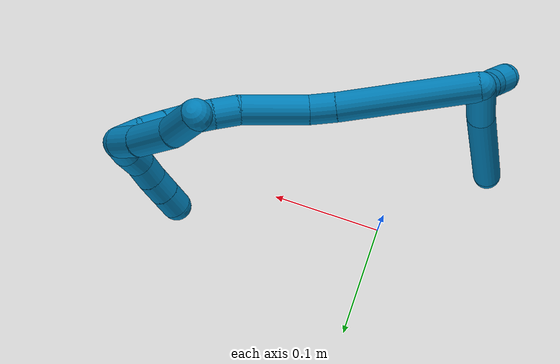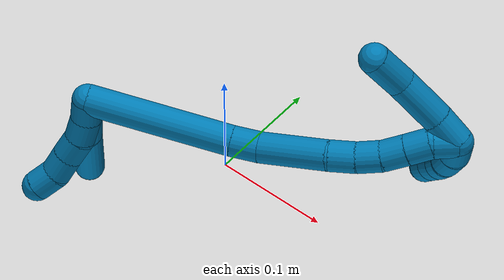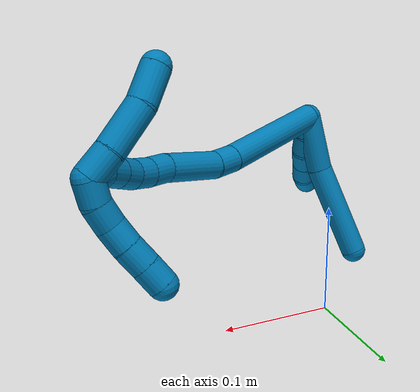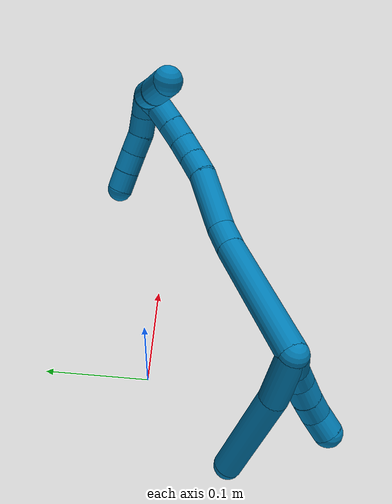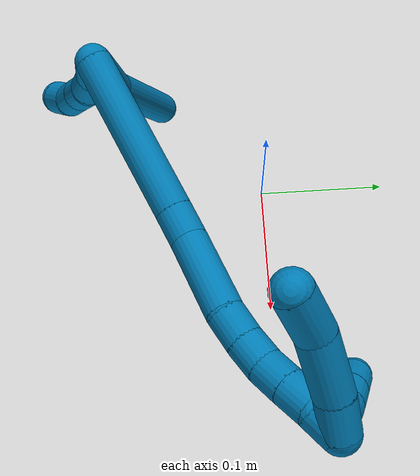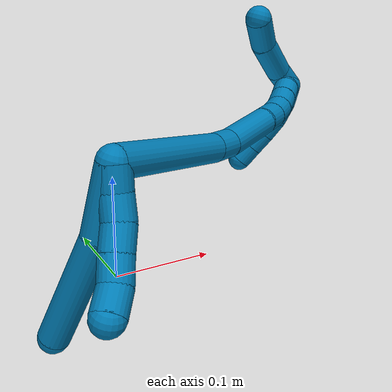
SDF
<sdf version="1.7">
 <world name="default">
  <model name="9">
   <static>0</static>
   <link name="9">
    <collision name="collision-cylinder-e_1_2_8">
     <pose>8.1e-05 0.000244 -0.027806 -3.1328 0.002909 -0.639119</pose>
     <geometry><cylinder><radius>0.0125</radius><length>0.055614</length></cylinder></geometry>
     <surface>
      <friction><ode><mu>1.16</mu><mu2>1.16</mu2><slip1>0</slip1><slip2>0</slip2></ode></friction>
      <contact><ode><kp>1e+06</kp><kd>1</kd><max_vel>0</max_vel><min_depth>0.001</min_depth></ode></contact>
     </surface>
    </collision>
    <visual name="visual-cylinder-e_1_2_8">
     <pose>8.1e-05 0.000244 -0.027806 -3.1328 0.002909 -0.639119</pose>
     <geometry><cylinder><radius>0.0125</radius><length>0.055614</length></cylinder></geometry>
     <material><ambient>0 0.490196 0.709804 1</ambient></material>
    </visual>
    <collision name="collision-cylinder-e_2_8_6">
     <pose>-0.006263 0.008012 -0.101756 -2.97999 -0.136557 1.40258</pose>
     <geometry><cylinder><radius>0.0125</radius><length>0.094386</length></cylinder></geometry>
     <surface>
      <friction><ode><mu>1.16</mu><mu2>1.16</mu2><slip1>0</slip1><slip2>0</slip2></ode></friction>
      <contact><ode><kp>1e+06</kp><kd>1</kd><max_vel>0</max_vel><min_depth>0.001</min_depth></ode></contact>
     </surface>
    </collision>
    <visual name="visual-cylinder-e_2_8_6">
     <pose>-0.006263 0.008012 -0.101756 -2.97999 -0.136557 1.40258</pose>
     <geometry><cylinder><radius>0.0125</radius><length>0.094386</length></cylinder></geometry>
     <material><ambient>0 0.490196 0.709804 1</ambient></material>
    </visual>
    <collision name="collision-cylinder-e_1_2_9">
     <pose>0.002205 -0.002159 -0.009512 2.91838 0.222279 1.56658</pose>
     <geometry><cylinder><radius>0.0125</radius><length>0.02</length></cylinder></geometry>
     <surface>
      <friction><ode><mu>1.16</mu><mu2>1.16</mu2><slip1>0</slip1><slip2>0</slip2></ode></friction>
      <contact><ode><kp>1e+06</kp><kd>1</kd><max_vel>0</max_vel><min_depth>0.001</min_depth></ode></contact>
     </surface>
    </collision>
    <visual name="visual-cylinder-e_1_2_9">
     <pose>0.002205 -0.002159 -0.009512 2.91838 0.222279 1.56658</pose>
     <geometry><cylinder><radius>0.0125</radius><length>0.02</length></cylinder></geometry>
     <material><ambient>0 0.490196 0.709804 1</ambient></material>
    </visual>
    <collision name="collision-cylinder-e_2_9_10">
     <pose>0.006535 -0.008894 -0.027658 2.6543 0.214243 0.816541</pose>
     <geometry><cylinder><radius>0.0125</radius><length>0.02</length></cylinder></geometry>
     <surface>
      <friction><ode><mu>1.16</mu><mu2>1.16</mu2><slip1>0</slip1><slip2>0</slip2></ode></friction>
      <contact><ode><kp>1e+06</kp><kd>1</kd><max_vel>0</max_vel><min_depth>0.001</min_depth></ode></contact>
     </surface>
    </collision>
    <visual name="visual-cylinder-e_2_9_10">
     <pose>0.006535 -0.008894 -0.027658 2.6543 0.214243 0.816541</pose>
     <geometry><cylinder><radius>0.0125</radius><length>0.02</length></cylinder></geometry>
     <material><ambient>0 0.490196 0.709804 1</ambient></material>
    </visual>
    <collision name="collision-cylinder-e_3_10_11">
     <pose>0.008459 -0.019113 -0.044544 2.54169 -0.020242 -0.065426</pose>
     <geometry><cylinder><radius>0.0125</radius><length>0.02</length></cylinder></geometry>
     <surface>
      <friction><ode><mu>1.16</mu><mu2>1.16</mu2><slip1>0</slip1><slip2>0</slip2></ode></friction>
      <contact><ode><kp>1e+06</kp><kd>1</kd><max_vel>0</max_vel><min_depth>0.001</min_depth></ode></contact>
     </surface>
    </collision>
    <visual name="visual-cylinder-e_3_10_11">
     <pose>0.008459 -0.019113 -0.044544 2.54169 -0.020242 -0.065426</pose>
     <geometry><cylinder><radius>0.0125</radius><length>0.02</length></cylinder></geometry>
     <material><ambient>0 0.490196 0.709804 1</ambient></material>
    </visual>
    <collision name="collision-cylinder-e_4_11_12">
     <pose>0.008582 -0.030766 -0.060784 2.49665 0.03254 0.097317</pose>
     <geometry><cylinder><radius>0.0125</radius><length>0.02</length></cylinder></geometry>
     <surface>
      <friction><ode><mu>1.16</mu><mu2>1.16</mu2><slip1>0</slip1><slip2>0</slip2></ode></friction>
      <contact><ode><kp>1e+06</kp><kd>1</kd><max_vel>0</max_vel><min_depth>0.001</min_depth></ode></contact>
     </surface>
    </collision>
    <visual name="visual-cylinder-e_4_11_12">
     <pose>0.008582 -0.030766 -0.060784 2.49665 0.03254 0.097317</pose>
     <geometry><cylinder><radius>0.0125</radius><length>0.02</length></cylinder></geometry>
     <material><ambient>0 0.490196 0.709804 1</ambient></material>
    </visual>
    <collision name="collision-cylinder-e_5_12_5">
     <pose>0.006599 -0.044229 -0.075024 2.26879 -0.232953 -0.491604</pose>
     <geometry><cylinder><radius>0.0125</radius><length>0.02</length></cylinder></geometry>
     <surface>
      <friction><ode><mu>1.16</mu><mu2>1.16</mu2><slip1>0</slip1><slip2>0</slip2></ode></friction>
      <contact><ode><kp>1e+06</kp><kd>1</kd><max_vel>0</max_vel><min_depth>0.001</min_depth></ode></contact>
     </surface>
    </collision>
    <visual name="visual-cylinder-e_5_12_5">
     <pose>0.006599 -0.044229 -0.075024 2.26879 -0.232953 -0.491604</pose>
     <geometry><cylinder><radius>0.0125</radius><length>0.02</length></cylinder></geometry>
     <material><ambient>0 0.490196 0.709804 1</ambient></material>
    </visual>
    <collision name="collision-cylinder-e_1_2_13">
     <pose>0.048026 0.034387 -0.000342 -1.58075 0.949389 -0.957508</pose>
     <geometry><cylinder><radius>0.0125</radius><length>0.118137</length></cylinder></geometry>
     <surface>
      <friction><ode><mu>1.16</mu><mu2>1.16</mu2><slip1>0</slip1><slip2>0</slip2></ode></friction>
      <contact><ode><kp>1e+06</kp><kd>1</kd><max_vel>0</max_vel><min_depth>0.001</min_depth></ode></contact>
     </surface>
    </collision>
    <visual name="visual-cylinder-e_1_2_13">
     <pose>0.048026 0.034387 -0.000342 -1.58075 0.949389 -0.957508</pose>
     <geometry><cylinder><radius>0.0125</radius><length>0.118137</length></cylinder></geometry>
     <material><ambient>0 0.490196 0.709804 1</ambient></material>
    </visual>
    <collision name="collision-cylinder-e_2_13_14">
     <pose>0.105371 0.075451 0.000584 -1.38303 0.940575 -0.796682</pose>
     <geometry><cylinder><radius>0.0125</radius><length>0.023068</length></cylinder></geometry>
     <surface>
      <friction><ode><mu>1.16</mu><mu2>1.16</mu2><slip1>0</slip1><slip2>0</slip2></ode></friction>
      <contact><ode><kp>1e+06</kp><kd>1</kd><max_vel>0</max_vel><min_depth>0.001</min_depth></ode></contact>
     </surface>
    </collision>
    <visual name="visual-cylinder-e_2_13_14">
     <pose>0.105371 0.075451 0.000584 -1.38303 0.940575 -0.796682</pose>
     <geometry><cylinder><radius>0.0125</radius><length>0.023068</length></cylinder></geometry>
     <material><ambient>0 0.490196 0.709804 1</ambient></material>
    </visual>
    <collision name="collision-cylinder-e_3_14_15">
     <pose>0.136665 0.097828 0.010808 -1.05238 0.882521 -0.535484</pose>
     <geometry><cylinder><radius>0.0125</radius><length>0.056907</length></cylinder></geometry>
     <surface>
      <friction><ode><mu>1.16</mu><mu2>1.16</mu2><slip1>0</slip1><slip2>0</slip2></ode></friction>
      <contact><ode><kp>1e+06</kp><kd>1</kd><max_vel>0</max_vel><min_depth>0.001</min_depth></ode></contact>
     </surface>
    </collision>
    <visual name="visual-cylinder-e_3_14_15">
     <pose>0.136665 0.097828 0.010808 -1.05238 0.882521 -0.535484</pose>
     <geometry><cylinder><radius>0.0125</radius><length>0.056907</length></cylinder></geometry>
     <material><ambient>0 0.490196 0.709804 1</ambient></material>
    </visual>
    <collision name="collision-cylinder-e_4_15_16">
     <pose>0.166486 0.120776 0.021856 -1.28982 0.804906 -0.619773</pose>
     <geometry><cylinder><radius>0.0125</radius><length>0.02177</length></cylinder></geometry>
     <surface>
      <friction><ode><mu>1.16</mu><mu2>1.16</mu2><slip1>0</slip1><slip2>0</slip2></ode></friction>
      <contact><ode><kp>1e+06</kp><kd>1</kd><max_vel>0</max_vel><min_depth>0.001</min_depth></ode></contact>
     </surface>
    </collision>
    <visual name="visual-cylinder-e_4_15_16">
     <pose>0.166486 0.120776 0.021856 -1.28982 0.804906 -0.619773</pose>
     <geometry><cylinder><radius>0.0125</radius><length>0.02177</length></cylinder></geometry>
     <material><ambient>0 0.490196 0.709804 1</ambient></material>
    </visual>
    <collision name="collision-cylinder-e_5_16_17">
     <pose>0.18073 0.135191 0.026916 -1.17823 0.68978 -0.471236</pose>
     <geometry><cylinder><radius>0.0125</radius><length>0.020109</length></cylinder></geometry>
     <surface>
      <friction><ode><mu>1.16</mu><mu2>1.16</mu2><slip1>0</slip1><slip2>0</slip2></ode></friction>
      <contact><ode><kp>1e+06</kp><kd>1</kd><max_vel>0</max_vel><min_depth>0.001</min_depth></ode></contact>
     </surface>
    </collision>
    <visual name="visual-cylinder-e_5_16_17">
     <pose>0.18073 0.135191 0.026916 -1.17823 0.68978 -0.471236</pose>
     <geometry><cylinder><radius>0.0125</radius><length>0.020109</length></cylinder></geometry>
     <material><ambient>0 0.490196 0.709804 1</ambient></material>
    </visual>
    <collision name="collision-cylinder-e_6_17_18">
     <pose>0.192063 0.150009 0.034024 -1.07474 0.515934 -0.311878</pose>
     <geometry><cylinder><radius>0.0125</radius><length>0.020005</length></cylinder></geometry>
     <surface>
      <friction><ode><mu>1.16</mu><mu2>1.16</mu2><slip1>0</slip1><slip2>0</slip2></ode></friction>
      <contact><ode><kp>1e+06</kp><kd>1</kd><max_vel>0</max_vel><min_depth>0.001</min_depth></ode></contact>
     </surface>
    </collision>
    <visual name="visual-cylinder-e_6_17_18">
     <pose>0.192063 0.150009 0.034024 -1.07474 0.515934 -0.311878</pose>
     <geometry><cylinder><radius>0.0125</radius><length>0.020005</length></cylinder></geometry>
     <material><ambient>0 0.490196 0.709804 1</ambient></material>
    </visual>
    <collision name="collision-cylinder-e_7_18_19">
     <pose>0.201733 0.165507 0.042169 -1.0989 0.493259 -0.305917</pose>
     <geometry><cylinder><radius>0.0125</radius><length>0.020001</length></cylinder></geometry>
     <surface>
      <friction><ode><mu>1.16</mu><mu2>1.16</mu2><slip1>0</slip1><slip2>0</slip2></ode></friction>
      <contact><ode><kp>1e+06</kp><kd>1</kd><max_vel>0</max_vel><min_depth>0.001</min_depth></ode></contact>
     </surface>
    </collision>
    <visual name="visual-cylinder-e_7_18_19">
     <pose>0.201733 0.165507 0.042169 -1.0989 0.493259 -0.305917</pose>
     <geometry><cylinder><radius>0.0125</radius><length>0.020001</length></cylinder></geometry>
     <material><ambient>0 0.490196 0.709804 1</ambient></material>
    </visual>
    <collision name="collision-cylinder-e_8_19_1">
     <pose>0.212281 0.181459 0.04691 -1.48012 0.620153 -0.569308</pose>
     <geometry><cylinder><radius>0.0125</radius><length>0.020003</length></cylinder></geometry>
     <surface>
      <friction><ode><mu>1.16</mu><mu2>1.16</mu2><slip1>0</slip1><slip2>0</slip2></ode></friction>
      <contact><ode><kp>1e+06</kp><kd>1</kd><max_vel>0</max_vel><min_depth>0.001</min_depth></ode></contact>
     </surface>
    </collision>
    <visual name="visual-cylinder-e_8_19_1">
     <pose>0.212281 0.181459 0.04691 -1.48012 0.620153 -0.569308</pose>
     <geometry><cylinder><radius>0.0125</radius><length>0.020003</length></cylinder></geometry>
     <material><ambient>0 0.490196 0.709804 1</ambient></material>
    </visual>
    <collision name="collision-cylinder-e_1_1_20">
     <pose>0.207627 0.186718 0.054365 0.40073 -0.962009 -0.211192</pose>
     <geometry><cylinder><radius>0.0125</radius><length>0.025515</length></cylinder></geometry>
     <surface>
      <friction><ode><mu>1.16</mu><mu2>1.16</mu2><slip1>0</slip1><slip2>0</slip2></ode></friction>
      <contact><ode><kp>1e+06</kp><kd>1</kd><max_vel>0</max_vel><min_depth>0.001</min_depth></ode></contact>
     </surface>
    </collision>
    <visual name="visual-cylinder-e_1_1_20">
     <pose>0.207627 0.186718 0.054365 0.40073 -0.962009 -0.211192</pose>
     <geometry><cylinder><radius>0.0125</radius><length>0.025515</length></cylinder></geometry>
     <material><ambient>0 0.490196 0.709804 1</ambient></material>
    </visual>
    <collision name="collision-cylinder-e_2_20_21">
     <pose>0.181223 0.177175 0.072995 0.512166 -0.862018 -0.239649</pose>
     <geometry><cylinder><radius>0.0125</radius><length>0.041991</length></cylinder></geometry>
     <surface>
      <friction><ode><mu>1.16</mu><mu2>1.16</mu2><slip1>0</slip1><slip2>0</slip2></ode></friction>
      <contact><ode><kp>1e+06</kp><kd>1</kd><max_vel>0</max_vel><min_depth>0.001</min_depth></ode></contact>
     </surface>
    </collision>
    <visual name="visual-cylinder-e_2_20_21">
     <pose>0.181223 0.177175 0.072995 0.512166 -0.862018 -0.239649</pose>
     <geometry><cylinder><radius>0.0125</radius><length>0.041991</length></cylinder></geometry>
     <material><ambient>0 0.490196 0.709804 1</ambient></material>
    </visual>
    <collision name="collision-cylinder-e_3_21_4">
     <pose>0.155694 0.163724 0.09615 0.540937 -0.631367 -0.180618</pose>
     <geometry><cylinder><radius>0.0125</radius><length>0.032494</length></cylinder></geometry>
     <surface>
      <friction><ode><mu>1.16</mu><mu2>1.16</mu2><slip1>0</slip1><slip2>0</slip2></ode></friction>
      <contact><ode><kp>1e+06</kp><kd>1</kd><max_vel>0</max_vel><min_depth>0.001</min_depth></ode></contact>
     </surface>
    </collision>
    <visual name="visual-cylinder-e_3_21_4">
     <pose>0.155694 0.163724 0.09615 0.540937 -0.631367 -0.180618</pose>
     <geometry><cylinder><radius>0.0125</radius><length>0.032494</length></cylinder></geometry>
     <material><ambient>0 0.490196 0.709804 1</ambient></material>
    </visual>
    <collision name="collision-cylinder-e_1_1_22">
     <pose>0.21814 0.189585 0.037647 -3.13949 0.004694 -2.29917</pose>
     <geometry><cylinder><radius>0.0125</radius><length>0.02</length></cylinder></geometry>
     <surface>
      <friction><ode><mu>1.16</mu><mu2>1.16</mu2><slip1>0</slip1><slip2>0</slip2></ode></friction>
      <contact><ode><kp>1e+06</kp><kd>1</kd><max_vel>0</max_vel><min_depth>0.001</min_depth></ode></contact>
     </surface>
    </collision>
    <visual name="visual-cylinder-e_1_1_22">
     <pose>0.21814 0.189585 0.037647 -3.13949 0.004694 -2.29917</pose>
     <geometry><cylinder><radius>0.0125</radius><length>0.02</length></cylinder></geometry>
     <material><ambient>0 0.490196 0.709804 1</ambient></material>
    </visual>
    <collision name="collision-cylinder-e_2_22_23">
     <pose>0.21559 0.189239 0.017998 3.10354 -0.262719 -2.85551</pose>
     <geometry><cylinder><radius>0.0125</radius><length>0.02</length></cylinder></geometry>
     <surface>
      <friction><ode><mu>1.16</mu><mu2>1.16</mu2><slip1>0</slip1><slip2>0</slip2></ode></friction>
      <contact><ode><kp>1e+06</kp><kd>1</kd><max_vel>0</max_vel><min_depth>0.001</min_depth></ode></contact>
     </surface>
    </collision>
    <visual name="visual-cylinder-e_2_22_23">
     <pose>0.21559 0.189239 0.017998 3.10354 -0.262719 -2.85551</pose>
     <geometry><cylinder><radius>0.0125</radius><length>0.02</length></cylinder></geometry>
     <material><ambient>0 0.490196 0.709804 1</ambient></material>
    </visual>
    <collision name="collision-cylinder-e_3_23_24">
     <pose>0.209394 0.190391 -0.000857 -2.97801 -0.368176 2.31214</pose>
     <geometry><cylinder><radius>0.0125</radius><length>0.02</length></cylinder></geometry>
     <surface>
      <friction><ode><mu>1.16</mu><mu2>1.16</mu2><slip1>0</slip1><slip2>0</slip2></ode></friction>
      <contact><ode><kp>1e+06</kp><kd>1</kd><max_vel>0</max_vel><min_depth>0.001</min_depth></ode></contact>
     </surface>
    </collision>
    <visual name="visual-cylinder-e_3_23_24">
     <pose>0.209394 0.190391 -0.000857 -2.97801 -0.368176 2.31214</pose>
     <geometry><cylinder><radius>0.0125</radius><length>0.02</length></cylinder></geometry>
     <material><ambient>0 0.490196 0.709804 1</ambient></material>
    </visual>
    <collision name="collision-cylinder-e_4_24_25">
     <pose>0.20145 0.193121 -0.018988 -3.00675 -0.449456 2.56714</pose>
     <geometry><cylinder><radius>0.0125</radius><length>0.02</length></cylinder></geometry>
     <surface>
      <friction><ode><mu>1.16</mu><mu2>1.16</mu2><slip1>0</slip1><slip2>0</slip2></ode></friction>
      <contact><ode><kp>1e+06</kp><kd>1</kd><max_vel>0</max_vel><min_depth>0.001</min_depth></ode></contact>
     </surface>
    </collision>
    <visual name="visual-cylinder-e_4_24_25">
     <pose>0.20145 0.193121 -0.018988 -3.00675 -0.449456 2.56714</pose>
     <geometry><cylinder><radius>0.0125</radius><length>0.02</length></cylinder></geometry>
     <material><ambient>0 0.490196 0.709804 1</ambient></material>
    </visual>
    <collision name="collision-cylinder-e_5_25_3">
     <pose>0.192923 0.195473 -0.036925 -3.01567 -0.431464 2.58135</pose>
     <geometry><cylinder><radius>0.0125</radius><length>0.02</length></cylinder></geometry>
     <surface>
      <friction><ode><mu>1.16</mu><mu2>1.16</mu2><slip1>0</slip1><slip2>0</slip2></ode></friction>
      <contact><ode><kp>1e+06</kp><kd>1</kd><max_vel>0</max_vel><min_depth>0.001</min_depth></ode></contact>
     </surface>
    </collision>
    <visual name="visual-cylinder-e_5_25_3">
     <pose>0.192923 0.195473 -0.036925 -3.01567 -0.431464 2.58135</pose>
     <geometry><cylinder><radius>0.0125</radius><length>0.02</length></cylinder></geometry>
     <material><ambient>0 0.490196 0.709804 1</ambient></material>
    </visual>
    <collision name="collision-sphere-3">
     <pose>0.188741 0.196614 -0.045936 0 -0 0</pose>
     <geometry><sphere><radius>0.0125</radius></sphere></geometry>
     <surface>
      <friction><ode><mu>1.16</mu><mu2>1.16</mu2><slip1>0</slip1><slip2>0</slip2></ode></friction>
      <contact><ode><kp>1e+06</kp><kd>1</kd><max_vel>0</max_vel><min_depth>0.001</min_depth></ode></contact>
     </surface>
    </collision>
    <visual name="visual-sphere-3">
     <pose>0.188741 0.196614 -0.045936 0 -0 0</pose>
     <geometry><sphere><radius>0.0125</radius></sphere></geometry>
     <material><ambient>0 0.490196 0.709804 1</ambient></material>
    </visual>
    <collision name="collision-sphere-25">
     <pose>0.197105 0.194332 -0.027913 0 -0 0</pose>
     <geometry><sphere><radius>0.0125</radius></sphere></geometry>
     <surface>
      <friction><ode><mu>1.16</mu><mu2>1.16</mu2><slip1>0</slip1><slip2>0</slip2></ode></friction>
      <contact><ode><kp>1e+06</kp><kd>1</kd><max_vel>0</max_vel><min_depth>0.001</min_depth></ode></contact>
     </surface>
    </collision>
    <visual name="visual-sphere-25">
     <pose>0.197105 0.194332 -0.027913 0 -0 0</pose>
     <geometry><sphere><radius>0.0125</radius></sphere></geometry>
     <material><ambient>0 0.490196 0.709804 1</ambient></material>
    </visual>
    <collision name="collision-sphere-24">
     <pose>0.205795 0.19191 -0.010063 0 -0 0</pose>
     <geometry><sphere><radius>0.0125</radius></sphere></geometry>
     <surface>
      <friction><ode><mu>1.16</mu><mu2>1.16</mu2><slip1>0</slip1><slip2>0</slip2></ode></friction>
      <contact><ode><kp>1e+06</kp><kd>1</kd><max_vel>0</max_vel><min_depth>0.001</min_depth></ode></contact>
     </surface>
    </collision>
    <visual name="visual-sphere-24">
     <pose>0.205795 0.19191 -0.010063 0 -0 0</pose>
     <geometry><sphere><radius>0.0125</radius></sphere></geometry>
     <material><ambient>0 0.490196 0.709804 1</ambient></material>
    </visual>
    <collision name="collision-sphere-23">
     <pose>0.212993 0.188872 0.008348 0 -0 0</pose>
     <geometry><sphere><radius>0.0125</radius></sphere></geometry>
     <surface>
      <friction><ode><mu>1.16</mu><mu2>1.16</mu2><slip1>0</slip1><slip2>0</slip2></ode></friction>
      <contact><ode><kp>1e+06</kp><kd>1</kd><max_vel>0</max_vel><min_depth>0.001</min_depth></ode></contact>
     </surface>
    </collision>
    <visual name="visual-sphere-23">
     <pose>0.212993 0.188872 0.008348 0 -0 0</pose>
     <geometry><sphere><radius>0.0125</radius></sphere></geometry>
     <material><ambient>0 0.490196 0.709804 1</ambient></material>
    </visual>
    <collision name="collision-sphere-22">
     <pose>0.218187 0.189606 0.027648 0 -0 0</pose>
     <geometry><sphere><radius>0.0125</radius></sphere></geometry>
     <surface>
      <friction><ode><mu>1.16</mu><mu2>1.16</mu2><slip1>0</slip1><slip2>0</slip2></ode></friction>
      <contact><ode><kp>1e+06</kp><kd>1</kd><max_vel>0</max_vel><min_depth>0.001</min_depth></ode></contact>
     </surface>
    </collision>
    <visual name="visual-sphere-22">
     <pose>0.218187 0.189606 0.027648 0 -0 0</pose>
     <geometry><sphere><radius>0.0125</radius></sphere></geometry>
     <material><ambient>0 0.490196 0.709804 1</ambient></material>
    </visual>
    <collision name="collision-sphere-4">
     <pose>0.146105 0.156971 0.107393 0 -0 0</pose>
     <geometry><sphere><radius>0.0125</radius></sphere></geometry>
     <surface>
      <friction><ode><mu>1.16</mu><mu2>1.16</mu2><slip1>0</slip1><slip2>0</slip2></ode></friction>
      <contact><ode><kp>1e+06</kp><kd>1</kd><max_vel>0</max_vel><min_depth>0.001</min_depth></ode></contact>
     </surface>
    </collision>
    <visual name="visual-sphere-4">
     <pose>0.146105 0.156971 0.107393 0 -0 0</pose>
     <geometry><sphere><radius>0.0125</radius></sphere></geometry>
     <material><ambient>0 0.490196 0.709804 1</ambient></material>
    </visual>
    <collision name="collision-sphere-21">
     <pose>0.165284 0.170478 0.084908 0 -0 0</pose>
     <geometry><sphere><radius>0.0125</radius></sphere></geometry>
     <surface>
      <friction><ode><mu>1.16</mu><mu2>1.16</mu2><slip1>0</slip1><slip2>0</slip2></ode></friction>
      <contact><ode><kp>1e+06</kp><kd>1</kd><max_vel>0</max_vel><min_depth>0.001</min_depth></ode></contact>
     </surface>
    </collision>
    <visual name="visual-sphere-21">
     <pose>0.165284 0.170478 0.084908 0 -0 0</pose>
     <geometry><sphere><radius>0.0125</radius></sphere></geometry>
     <material><ambient>0 0.490196 0.709804 1</ambient></material>
    </visual>
    <collision name="collision-sphere-20">
     <pose>0.197162 0.183872 0.061083 0 -0 0</pose>
     <geometry><sphere><radius>0.0125</radius></sphere></geometry>
     <surface>
      <friction><ode><mu>1.16</mu><mu2>1.16</mu2><slip1>0</slip1><slip2>0</slip2></ode></friction>
      <contact><ode><kp>1e+06</kp><kd>1</kd><max_vel>0</max_vel><min_depth>0.001</min_depth></ode></contact>
     </surface>
    </collision>
    <visual name="visual-sphere-20">
     <pose>0.197162 0.183872 0.061083 0 -0 0</pose>
     <geometry><sphere><radius>0.0125</radius></sphere></geometry>
     <material><ambient>0 0.490196 0.709804 1</ambient></material>
    </visual>
    <collision name="collision-sphere-11">
     <pose>0.008256 -0.024758 -0.052796 0 -0 0</pose>
     <geometry><sphere><radius>0.0125</radius></sphere></geometry>
     <surface>
      <friction><ode><mu>1.16</mu><mu2>1.16</mu2><slip1>0</slip1><slip2>0</slip2></ode></friction>
      <contact><ode><kp>1e+06</kp><kd>1</kd><max_vel>0</max_vel><min_depth>0.001</min_depth></ode></contact>
     </surface>
    </collision>
    <visual name="visual-sphere-11">
     <pose>0.008256 -0.024758 -0.052796 0 -0 0</pose>
     <geometry><sphere><radius>0.0125</radius></sphere></geometry>
     <material><ambient>0 0.490196 0.709804 1</ambient></material>
    </visual>
    <collision name="collision-sphere-10">
     <pose>0.008661 -0.013469 -0.036292 0 -0 0</pose>
     <geometry><sphere><radius>0.0125</radius></sphere></geometry>
     <surface>
      <friction><ode><mu>1.16</mu><mu2>1.16</mu2><slip1>0</slip1><slip2>0</slip2></ode></friction>
      <contact><ode><kp>1e+06</kp><kd>1</kd><max_vel>0</max_vel><min_depth>0.001</min_depth></ode></contact>
     </surface>
    </collision>
    <visual name="visual-sphere-10">
     <pose>0.008661 -0.013469 -0.036292 0 -0 0</pose>
     <geometry><sphere><radius>0.0125</radius></sphere></geometry>
     <material><ambient>0 0.490196 0.709804 1</ambient></material>
    </visual>
    <collision name="collision-sphere-6">
     <pose>-0.012687 0.015534 -0.147901 0 -0 0</pose>
     <geometry><sphere><radius>0.0125</radius></sphere></geometry>
     <surface>
      <friction><ode><mu>1.16</mu><mu2>1.16</mu2><slip1>0</slip1><slip2>0</slip2></ode></friction>
      <contact><ode><kp>1e+06</kp><kd>1</kd><max_vel>0</max_vel><min_depth>0.001</min_depth></ode></contact>
     </surface>
    </collision>
    <visual name="visual-sphere-6">
     <pose>-0.012687 0.015534 -0.147901 0 -0 0</pose>
     <geometry><sphere><radius>0.0125</radius></sphere></geometry>
     <material><ambient>0 0.490196 0.709804 1</ambient></material>
    </visual>
    <collision name="collision-sphere-9">
     <pose>0.004409 -0.004318 -0.019024 0 -0 0</pose>
     <geometry><sphere><radius>0.0125</radius></sphere></geometry>
     <surface>
      <friction><ode><mu>1.16</mu><mu2>1.16</mu2><slip1>0</slip1><slip2>0</slip2></ode></friction>
      <contact><ode><kp>1e+06</kp><kd>1</kd><max_vel>0</max_vel><min_depth>0.001</min_depth></ode></contact>
     </surface>
    </collision>
    <visual name="visual-sphere-9">
     <pose>0.004409 -0.004318 -0.019024 0 -0 0</pose>
     <geometry><sphere><radius>0.0125</radius></sphere></geometry>
     <material><ambient>0 0.490196 0.709804 1</ambient></material>
    </visual>
    <collision name="collision-sphere-2">
     <geometry><sphere><radius>0.0125</radius></sphere></geometry>
     <surface>
      <friction><ode><mu>1.16</mu><mu2>1.16</mu2><slip1>0</slip1><slip2>0</slip2></ode></friction>
      <contact><ode><kp>1e+06</kp><kd>1</kd><max_vel>0</max_vel><min_depth>0.001</min_depth></ode></contact>
     </surface>
    </collision>
    <visual name="visual-sphere-2">
     <geometry><sphere><radius>0.0125</radius></sphere></geometry>
     <material><ambient>0 0.490196 0.709804 1</ambient></material>
    </visual>
    <collision name="collision-sphere-19">
     <pose>0.206468 0.173353 0.046173 0 -0 0</pose>
     <geometry><sphere><radius>0.0125</radius></sphere></geometry>
     <surface>
      <friction><ode><mu>1.16</mu><mu2>1.16</mu2><slip1>0</slip1><slip2>0</slip2></ode></friction>
      <contact><ode><kp>1e+06</kp><kd>1</kd><max_vel>0</max_vel><min_depth>0.001</min_depth></ode></contact>
     </surface>
    </collision>
    <visual name="visual-sphere-19">
     <pose>0.206468 0.173353 0.046173 0 -0 0</pose>
     <geometry><sphere><radius>0.0125</radius></sphere></geometry>
     <material><ambient>0 0.490196 0.709804 1</ambient></material>
    </visual>
    <collision name="collision-sphere-8">
     <pose>0.000162 0.000489 -0.055611 0 -0 0</pose>
     <geometry><sphere><radius>0.0125</radius></sphere></geometry>
     <surface>
      <friction><ode><mu>1.16</mu><mu2>1.16</mu2><slip1>0</slip1><slip2>0</slip2></ode></friction>
      <contact><ode><kp>1e+06</kp><kd>1</kd><max_vel>0</max_vel><min_depth>0.001</min_depth></ode></contact>
     </surface>
    </collision>
    <visual name="visual-sphere-8">
     <pose>0.000162 0.000489 -0.055611 0 -0 0</pose>
     <geometry><sphere><radius>0.0125</radius></sphere></geometry>
     <material><ambient>0 0.490196 0.709804 1</ambient></material>
    </visual>
    <collision name="collision-sphere-12">
     <pose>0.008907 -0.036775 -0.068771 0 -0 0</pose>
     <geometry><sphere><radius>0.0125</radius></sphere></geometry>
     <surface>
      <friction><ode><mu>1.16</mu><mu2>1.16</mu2><slip1>0</slip1><slip2>0</slip2></ode></friction>
      <contact><ode><kp>1e+06</kp><kd>1</kd><max_vel>0</max_vel><min_depth>0.001</min_depth></ode></contact>
     </surface>
    </collision>
    <visual name="visual-sphere-12">
     <pose>0.008907 -0.036775 -0.068771 0 -0 0</pose>
     <geometry><sphere><radius>0.0125</radius></sphere></geometry>
     <material><ambient>0 0.490196 0.709804 1</ambient></material>
    </visual>
    <collision name="collision-sphere-5">
     <pose>0.00429 -0.051683 -0.081277 0 -0 0</pose>
     <geometry><sphere><radius>0.0125</radius></sphere></geometry>
     <surface>
      <friction><ode><mu>1.16</mu><mu2>1.16</mu2><slip1>0</slip1><slip2>0</slip2></ode></friction>
      <contact><ode><kp>1e+06</kp><kd>1</kd><max_vel>0</max_vel><min_depth>0.001</min_depth></ode></contact>
     </surface>
    </collision>
    <visual name="visual-sphere-5">
     <pose>0.00429 -0.051683 -0.081277 0 -0 0</pose>
     <geometry><sphere><radius>0.0125</radius></sphere></geometry>
     <material><ambient>0 0.490196 0.709804 1</ambient></material>
    </visual>
    <collision name="collision-sphere-13">
     <pose>0.096052 0.068774 -0.000685 0 -0 0</pose>
     <geometry><sphere><radius>0.0125</radius></sphere></geometry>
     <surface>
      <friction><ode><mu>1.16</mu><mu2>1.16</mu2><slip1>0</slip1><slip2>0</slip2></ode></friction>
      <contact><ode><kp>1e+06</kp><kd>1</kd><max_vel>0</max_vel><min_depth>0.001</min_depth></ode></contact>
     </surface>
    </collision>
    <visual name="visual-sphere-13">
     <pose>0.096052 0.068774 -0.000685 0 -0 0</pose>
     <geometry><sphere><radius>0.0125</radius></sphere></geometry>
     <material><ambient>0 0.490196 0.709804 1</ambient></material>
    </visual>
    <collision name="collision-sphere-14">
     <pose>0.114689 0.082129 0.001853 0 -0 0</pose>
     <geometry><sphere><radius>0.0125</radius></sphere></geometry>
     <surface>
      <friction><ode><mu>1.16</mu><mu2>1.16</mu2><slip1>0</slip1><slip2>0</slip2></ode></friction>
      <contact><ode><kp>1e+06</kp><kd>1</kd><max_vel>0</max_vel><min_depth>0.001</min_depth></ode></contact>
     </surface>
    </collision>
    <visual name="visual-sphere-14">
     <pose>0.114689 0.082129 0.001853 0 -0 0</pose>
     <geometry><sphere><radius>0.0125</radius></sphere></geometry>
     <material><ambient>0 0.490196 0.709804 1</ambient></material>
    </visual>
    <collision name="collision-sphere-15">
     <pose>0.15864 0.113527 0.019764 0 -0 0</pose>
     <geometry><sphere><radius>0.0125</radius></sphere></geometry>
     <surface>
      <friction><ode><mu>1.16</mu><mu2>1.16</mu2><slip1>0</slip1><slip2>0</slip2></ode></friction>
      <contact><ode><kp>1e+06</kp><kd>1</kd><max_vel>0</max_vel><min_depth>0.001</min_depth></ode></contact>
     </surface>
    </collision>
    <visual name="visual-sphere-15">
     <pose>0.15864 0.113527 0.019764 0 -0 0</pose>
     <geometry><sphere><radius>0.0125</radius></sphere></geometry>
     <material><ambient>0 0.490196 0.709804 1</ambient></material>
    </visual>
    <collision name="collision-sphere-16">
     <pose>0.174331 0.128025 0.023949 0 -0 0</pose>
     <geometry><sphere><radius>0.0125</radius></sphere></geometry>
     <surface>
      <friction><ode><mu>1.16</mu><mu2>1.16</mu2><slip1>0</slip1><slip2>0</slip2></ode></friction>
      <contact><ode><kp>1e+06</kp><kd>1</kd><max_vel>0</max_vel><min_depth>0.001</min_depth></ode></contact>
     </surface>
    </collision>
    <visual name="visual-sphere-16">
     <pose>0.174331 0.128025 0.023949 0 -0 0</pose>
     <geometry><sphere><radius>0.0125</radius></sphere></geometry>
     <material><ambient>0 0.490196 0.709804 1</ambient></material>
    </visual>
    <collision name="collision-sphere-17">
     <pose>0.187128 0.142357 0.029883 0 -0 0</pose>
     <geometry><sphere><radius>0.0125</radius></sphere></geometry>
     <surface>
      <friction><ode><mu>1.16</mu><mu2>1.16</mu2><slip1>0</slip1><slip2>0</slip2></ode></friction>
      <contact><ode><kp>1e+06</kp><kd>1</kd><max_vel>0</max_vel><min_depth>0.001</min_depth></ode></contact>
     </surface>
    </collision>
    <visual name="visual-sphere-17">
     <pose>0.187128 0.142357 0.029883 0 -0 0</pose>
     <geometry><sphere><radius>0.0125</radius></sphere></geometry>
     <material><ambient>0 0.490196 0.709804 1</ambient></material>
    </visual>
    <collision name="collision-sphere-18">
     <pose>0.196998 0.157661 0.038165 0 -0 0</pose>
     <geometry><sphere><radius>0.0125</radius></sphere></geometry>
     <surface>
      <friction><ode><mu>1.16</mu><mu2>1.16</mu2><slip1>0</slip1><slip2>0</slip2></ode></friction>
      <contact><ode><kp>1e+06</kp><kd>1</kd><max_vel>0</max_vel><min_depth>0.001</min_depth></ode></contact>
     </surface>
    </collision>
    <visual name="visual-sphere-18">
     <pose>0.196998 0.157661 0.038165 0 -0 0</pose>
     <geometry><sphere><radius>0.0125</radius></sphere></geometry>
     <material><ambient>0 0.490196 0.709804 1</ambient></material>
    </visual>
    <collision name="collision-sphere-1">
     <pose>0.218093 0.189564 0.047647 0 -0 0</pose>
     <geometry><sphere><radius>0.0125</radius></sphere></geometry>
     <surface>
      <friction><ode><mu>1.16</mu><mu2>1.16</mu2><slip1>0</slip1><slip2>0</slip2></ode></friction>
      <contact><ode><kp>1e+06</kp><kd>1</kd><max_vel>0</max_vel><min_depth>0.001</min_depth></ode></contact>
     </surface>
    </collision>
    <visual name="visual-sphere-1">
     <pose>0.218093 0.189564 0.047647 0 -0 0</pose>
     <geometry><sphere><radius>0.0125</radius></sphere></geometry>
     <material><ambient>0 0.490196 0.709804 1</ambient></material>
    </visual>
    <inertial>
     <pose>0.098721 0.082674 -0.005173 0 -0 0</pose>
     <mass>0.75</mass>
     <inertia><ixx>9.3e-05</ixx><ixy>0</ixy><ixz>0</ixz><iyy>0.0001</iyy><iyz>0</iyz><izz>-0.000233</izz></inertia>
    </inertial>
   </link>
   <pose>-0.041579 -0.117326 0.150783 0.093122 0.225032 -0.188098</pose>
  </model>
 </world>
</sdf>
